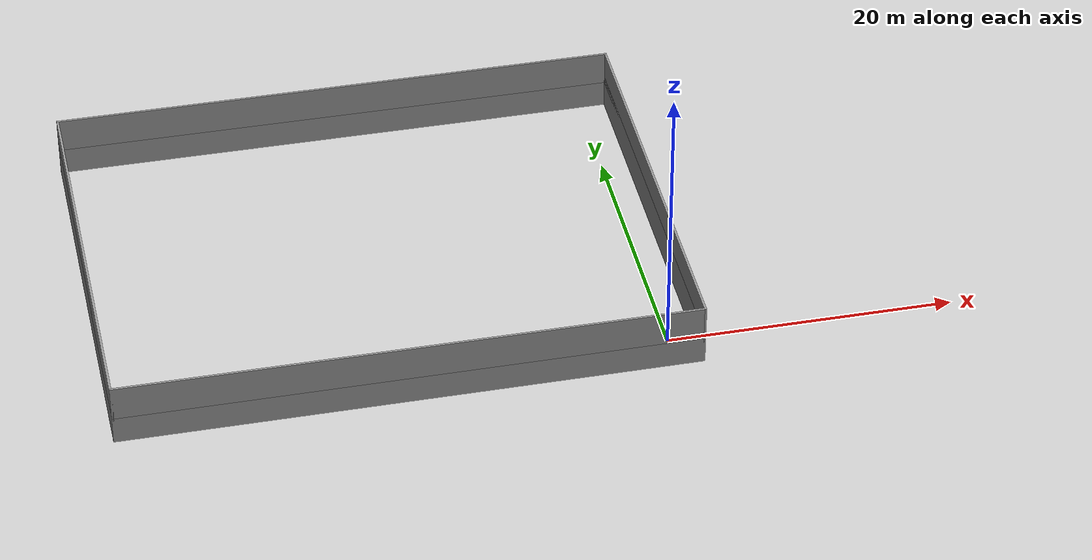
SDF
<sdf version="1.6">
 <world name="default">
  <light name="sun" type="directional">
   <pose>0 0 10 0 -0 0</pose>
   <diffuse>0.8 0.8 0.8 1</diffuse>
   <specular>0.2 0.2 0.2 1</specular>
   <attenuation>
    <range>1000</range>
    <constant>0.9</constant>
    <linear>0.01</linear>
    <quadratic>0.001</quadratic>
   </attenuation>
   <direction>-0.5 0.1 -0.9</direction>
  </light>
  <model name="ground_plane">
   <static>1</static>
   <link name="link">
    <collision name="collision">
     <geometry><plane><normal>0 0 1</normal><size>100 100</size></plane></geometry>
     <surface>
      <contact><collide_bitmask>65535</collide_bitmask></contact>
      <friction><ode><mu>100</mu><mu2>50</mu2></ode></friction>
     </surface>
    </collision>
    <visual name="visual">
     <cast_shadows>0</cast_shadows>
     <geometry><plane><normal>0 0 1</normal><size>100 100</size></plane></geometry>
     <material>
      <script><uri>file://media/materials/scripts/gazebo.material</uri><name>Gazebo/Grey</name></script>
     </material>
    </visual>
   </link>
  </model>
  <gravity>0 0 -9.8</gravity>
  <magnetic_field>6e-06 2.3e-05 -4.2e-05</magnetic_field>
  <atmosphere type="adiabatic"/>
  <physics name="default_physics" default="0" type="ode">
   <max_step_size>0.001</max_step_size>
   <real_time_factor>1</real_time_factor>
   <real_time_update_rate>1000</real_time_update_rate>
  </physics>
  <scene><ambient>0.4 0.4 0.4 1</ambient><background>0.7 0.7 0.7 1</background><shadows>1</shadows></scene>
  <spherical_coordinates>
   <surface_model>EARTH_WGS84</surface_model>
   <latitude_deg>0</latitude_deg>
   <longitude_deg>0</longitude_deg>
   <elevation>0</elevation>
   <heading_deg>0</heading_deg>
  </spherical_coordinates>
  <physics name="default_physics" default="0" type="ode">
   <ode>
    <solver>
     <type>quick</type>
     <iters>20</iters>
     <sor>1.3</sor>
     <use_dynamic_moi_rescaling>0</use_dynamic_moi_rescaling>
    </solver>
    <constraints>
     <cfm>0</cfm>
     <erp>0.2</erp>
     <contact_max_correcting_vel>100</contact_max_correcting_vel>
     <contact_surface_layer>0.001</contact_surface_layer>
    </constraints>
   </ode>
   <max_step_size>0.002</max_step_size>
   <real_time_factor>1</real_time_factor>
   <real_time_update_rate>500</real_time_update_rate>
  </physics>
  <audio><device>default</device></audio>
  <model name="empty_room_big">
   <pose>-18 12.4259 2 0 -0 0</pose>
   <link name="Wall_1">
    <collision name="Wall_1_Collision">
     <geometry><box><size>30 0.15 2.5</size></box></geometry>
     <pose>0 0 1.25 0 -0 0</pose>
    </collision>
    <visual name="Wall_1_Visual">
     <pose>0 0 1.25 0 -0 0</pose>
     <geometry><box><size>30 0.15 2.5</size></box></geometry>
     <material>
      <script><uri>file://media/materials/scripts/gazebo.material</uri><name>Gazebo/Grey</name></script>
      <ambient>1 1 1 1</ambient>
     </material>
     <meta><layer>0</layer></meta>
    </visual>
    <pose>-19.925 0 0 0 -0 -1.5708</pose>
   </link>
   <link name="Wall_2">
    <collision name="Wall_2_Collision">
     <geometry><box><size>40 0.15 2.5</size></box></geometry>
     <pose>0 0 1.25 0 -0 0</pose>
    </collision>
    <visual name="Wall_2_Visual">
     <pose>0 0 1.25 0 -0 0</pose>
     <geometry><box><size>40 0.15 2.5</size></box></geometry>
     <material>
      <script><uri>file://media/materials/scripts/gazebo.material</uri><name>Gazebo/Grey</name></script>
      <ambient>1 1 1 1</ambient>
     </material>
     <meta><layer>0</layer></meta>
    </visual>
    <pose>-0 -14.925 0 0 -0 0</pose>
   </link>
   <link name="Wall_3">
    <collision name="Wall_3_Collision">
     <geometry><box><size>30 0.15 2.5</size></box></geometry>
     <pose>0 0 1.25 0 -0 0</pose>
    </collision>
    <visual name="Wall_3_Visual">
     <pose>0 0 1.25 0 -0 0</pose>
     <geometry><box><size>30 0.15 2.5</size></box></geometry>
     <material>
      <script><uri>file://media/materials/scripts/gazebo.material</uri><name>Gazebo/Grey</name></script>
      <ambient>1 1 1 1</ambient>
     </material>
     <meta><layer>0</layer></meta>
    </visual>
    <pose>19.925 0 0 0 -0 1.5708</pose>
   </link>
   <link name="Wall_4">
    <collision name="Wall_4_Collision">
     <geometry><box><size>40 0.15 2.5</size></box></geometry>
     <pose>0 0 1.25 0 -0 0</pose>
    </collision>
    <visual name="Wall_4_Visual">
     <pose>0 0 1.25 0 -0 0</pose>
     <geometry><box><size>40 0.15 2.5</size></box></geometry>
     <material>
      <script><uri>file://media/materials/scripts/gazebo.material</uri><name>Gazebo/Grey</name></script>
      <ambient>1 1 1 1</ambient>
     </material>
     <meta><layer>0</layer></meta>
    </visual>
    <pose>-0 14.925 0 0 -0 3.14159</pose>
   </link>
   <static>1</static>
  </model>
  <model name="empty_room_big_clone">
   <pose>-18 12.4402 0 0 -0 0</pose>
   <link name="Wall_1">
    <collision name="Wall_1_Collision">
     <geometry><box><size>30 0.15 2.5</size></box></geometry>
     <pose>0 0 1.25 0 -0 0</pose>
    </collision>
    <visual name="Wall_1_Visual">
     <pose>0 0 1.25 0 -0 0</pose>
     <geometry><box><size>30 0.15 2.5</size></box></geometry>
     <material>
      <script><uri>file://media/materials/scripts/gazebo.material</uri><name>Gazebo/Grey</name></script>
      <ambient>1 1 1 1</ambient>
     </material>
     <meta><layer>0</layer></meta>
    </visual>
    <pose>-19.925 0 0 0 -0 -1.5708</pose>
   </link>
   <link name="Wall_2">
    <collision name="Wall_2_Collision">
     <geometry><box><size>40 0.15 2.5</size></box></geometry>
     <pose>0 0 1.25 0 -0 0</pose>
    </collision>
    <visual name="Wall_2_Visual">
     <pose>0 0 1.25 0 -0 0</pose>
     <geometry><box><size>40 0.15 2.5</size></box></geometry>
     <material>
      <script><uri>file://media/materials/scripts/gazebo.material</uri><name>Gazebo/Grey</name></script>
      <ambient>1 1 1 1</ambient>
     </material>
     <meta><layer>0</layer></meta>
    </visual>
    <pose>-0 -14.925 0 0 -0 0</pose>
   </link>
   <link name="Wall_3">
    <collision name="Wall_3_Collision">
     <geometry><box><size>30 0.15 2.5</size></box></geometry>
     <pose>0 0 1.25 0 -0 0</pose>
    </collision>
    <visual name="Wall_3_Visual">
     <pose>0 0 1.25 0 -0 0</pose>
     <geometry><box><size>30 0.15 2.5</size></box></geometry>
     <material>
      <script><uri>file://media/materials/scripts/gazebo.material</uri><name>Gazebo/Grey</name></script>
      <ambient>1 1 1 1</ambient>
     </material>
     <meta><layer>0</layer></meta>
    </visual>
    <pose>19.925 0 0 0 -0 1.5708</pose>
   </link>
   <link name="Wall_4">
    <collision name="Wall_4_Collision">
     <geometry><box><size>40 0.15 2.5</size></box></geometry>
     <pose>0 0 1.25 0 -0 0</pose>
    </collision>
    <visual name="Wall_4_Visual">
     <pose>0 0 1.25 0 -0 0</pose>
     <geometry><box><size>40 0.15 2.5</size></box></geometry>
     <material>
      <script><uri>file://media/materials/scripts/gazebo.material</uri><name>Gazebo/Grey</name></script>
      <ambient>1 1 1 1</ambient>
     </material>
     <meta><layer>0</layer></meta>
    </visual>
    <pose>-0 14.925 0 0 -0 3.14159</pose>
   </link>
   <static>1</static>
  </model>
 </world>
</sdf>
